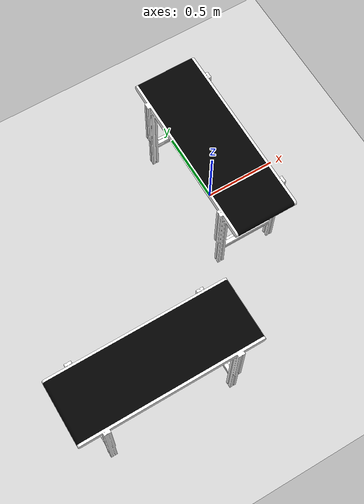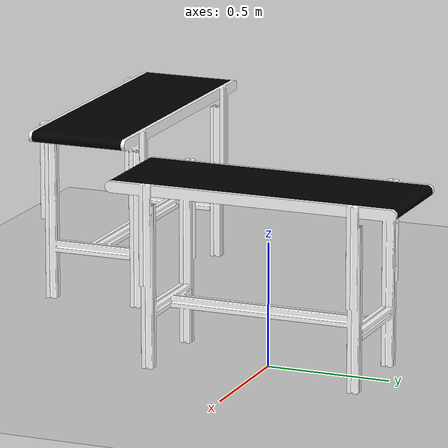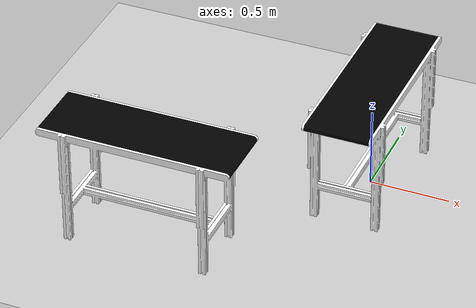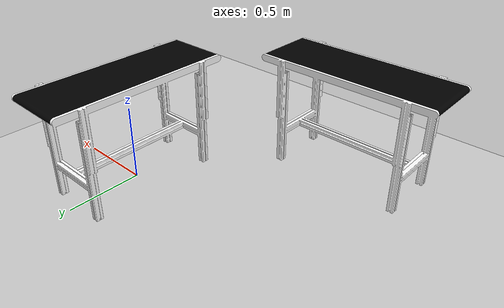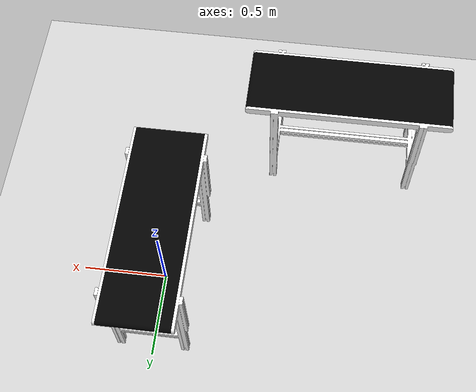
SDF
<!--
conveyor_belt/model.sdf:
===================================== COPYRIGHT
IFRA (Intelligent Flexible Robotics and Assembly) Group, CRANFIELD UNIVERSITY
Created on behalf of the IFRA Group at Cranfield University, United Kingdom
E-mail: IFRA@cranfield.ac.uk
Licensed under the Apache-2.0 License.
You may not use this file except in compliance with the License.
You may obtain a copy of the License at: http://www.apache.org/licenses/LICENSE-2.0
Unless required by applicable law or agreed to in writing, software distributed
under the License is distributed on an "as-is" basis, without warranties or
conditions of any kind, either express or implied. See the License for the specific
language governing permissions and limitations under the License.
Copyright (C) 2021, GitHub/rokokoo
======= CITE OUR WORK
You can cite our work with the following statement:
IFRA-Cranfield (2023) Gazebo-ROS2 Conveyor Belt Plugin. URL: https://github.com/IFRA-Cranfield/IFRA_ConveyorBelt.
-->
<?xml version="1.0" ?>
<sdf version="1.4">
  <world name="default">
    <gravity>0 0 -9.8</gravity>
    <include>
      <uri>model://ground_plane</uri>
    </include>
    <include>
      <uri>model://sun</uri>
    </include>
    <scene>
      <shadows>0</shadows>
    </scene>

    <!-- Publishes /gazebo/model_states so scene_publisher can track objects -->
    <plugin name="gazebo_ros_state" filename="libgazebo_ros_state.so">
      <update_rate>10.0</update_rate>
    </plugin>
    <!-- Link attacher: provides /ATTACHLINK and /DETACHLINK services -->
    <plugin name="gazebo_link_attacher" filename="libgazebo_link_attacher.so"/>
    <!-- Belt 1: original, runs along Y axis at origin -->
    <include>
      <name>conveyor_belt</name>
      <pose>0 0 0 0 0 0</pose>
      <uri>model://conveyor_belt</uri>
    </include>
    <!-- Belt 2: perpendicular to belt 1, runs along X axis at (-1,-1,0) -->
    <include>
      <name>conveyor_belt_2</name>
      <pose>-1 -1 0 0 0 -1.5708</pose>
      <uri>model://conveyor_belt_2</uri>
    </include>
  </world>
</sdf>

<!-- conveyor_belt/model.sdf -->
<sdf version="1.4">

    <model name="conveyor_belt">

        <model name="conveyorbelt_fixed">

            <static>true</static>

            <link name="belt_visual">
                <visual name="visual">
                    <geometry>
                        <mesh>
                            <scale>1 1 1</scale>
                            <uri>model://conveyor_belt/meshes/conveyor_belt.dae</uri>
                        </mesh>
                    </geometry>
                </visual>
                <collision name="collision">
                    <origin xyz="0.0 0.0 0" rpy="0.0 0.0 0.0"/>
                    <geometry>
                        <mesh>
                            <scale>1 1 1</scale>
                            <uri>model://conveyor_belt/meshes/conveyor_belt.dae</uri>
                        </mesh>
                    </geometry>
                </collision>
            </link>

            <link name="belt1_sonar_link">
                <pose>0 0.6 0.791 0 1.5708 0</pose>
                <sensor name="sonar_sensor" type="ray">
                    <always_on>1</always_on>
                    <visualize>true</visualize>
                    <update_rate>20</update_rate>
                    <ray>
                        <scan>
                            <horizontal>
                                <samples>1</samples>
                                <resolution>1</resolution>
                                <min_angle>0.0</min_angle>
                                <max_angle>0.0</max_angle>
                            </horizontal>
                        </scan>
                        <range>
                            <min>0.02</min>
                            <max>1.0</max>
                        </range>
                    </ray>
                    <plugin name="belt1_sonar_plugin" filename="libgazebo_ros_ray_sensor.so">
                        <ros>
                            <remapping>~/out:=belt1/sonar</remapping>
                        </ros>
                        <output_type>sensor_msgs/Range</output_type>
                        <frame_name>belt1_sonar_link</frame_name>
                    </plugin>
                </sensor>
            </link>

        </model>

        <model name="conveyorbelt_moving">

            <allow_auto_disable>0</allow_auto_disable>
            <static>false</static>

            <pose>0 0 0.741 0 0 0.0</pose>

            <link name="belt_moving">
                <inertial>
                    <mass>100.0</mass>
                    <inertia>
                        <ixx>0.0</ixx>
                        <ixy>0.0</ixy>
                        <ixz>0.0</ixz>
                        <iyy>0.0</iyy>
                        <iyz>0.0</iyz>
                        <izz>0.0</izz>
                    </inertia>
                </inertial>
                <collision name="belt_collision">
                    <geometry>
                        <box>
                            <size>0.425 1.2 0.00001</size>
                        </box>
                    </geometry>
                    <surface>
                        <friction>
                            <ode>
                                <mu>100.0</mu>
                                <mu2>100.0</mu2>
                            </ode>
                            <torsional>
                                <coefficient>1000.0</coefficient>
                                <patch_radius>0.1</patch_radius>
                            </torsional>
                        </friction>
                    </surface>
                </collision>
            </link>

        </model>

        <joint name="belt_joint" type="prismatic">
            <parent>conveyorbelt_fixed::belt_visual</parent>
            <child>conveyorbelt_moving::belt_moving</child>
            <axis>
                <xyz>0 1 0</xyz>
                <limit>
                    <lower>0.0</lower>
                    <upper>0.01</upper>
                </limit>
            </axis>
        </joint>

        <plugin name="ros2_conveyorbelt_plugin" filename="libros2_conveyorbelt_plugin.so" >
            <ros>
                <namespace></namespace>
            </ros>
            <max_velocity>1.0</max_velocity>
            <publish_rate>1000</publish_rate>
        </plugin>

    </model>

</sdf>

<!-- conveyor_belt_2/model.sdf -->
<sdf version="1.4">

    <model name="conveyor_belt_2">

        <model name="conveyorbelt_fixed">

            <static>true</static>

            <link name="belt_visual">
                <visual name="visual">
                    <geometry>
                        <mesh>
                            <scale>1 1 1</scale>
                            <uri>model://conveyor_belt/meshes/conveyor_belt.dae</uri>
                        </mesh>
                    </geometry>
                </visual>
                <collision name="collision">
                    <origin xyz="0.0 0.0 0" rpy="0.0 0.0 0.0"/>
                    <geometry>
                        <mesh>
                            <scale>1 1 1</scale>
                            <uri>model://conveyor_belt/meshes/conveyor_belt.dae</uri>
                        </mesh>
                    </geometry>
                </collision>
            </link>

            <link name="belt2_sonar_link">
                <pose>0 0.30 0.791 0 1.5708 0</pose>
                <sensor name="sonar_sensor" type="ray">
                    <always_on>1</always_on>
                    <visualize>true</visualize>
                    <update_rate>20</update_rate>
                    <ray>
                        <scan>
                            <horizontal>
                                <samples>1</samples>
                                <resolution>1</resolution>
                                <min_angle>0.0</min_angle>
                                <max_angle>0.0</max_angle>
                            </horizontal>
                        </scan>
                        <range>
                            <min>0.02</min>
                            <max>1.0</max>
                        </range>
                    </ray>
                    <plugin name="belt2_sonar_plugin" filename="libgazebo_ros_ray_sensor.so">
                        <ros>
                            <remapping>~/out:=belt2/sonar</remapping>
                        </ros>
                        <output_type>sensor_msgs/Range</output_type>
                        <frame_name>belt2_sonar_link</frame_name>
                    </plugin>
                </sensor>
            </link>

        </model>

        <model name="conveyorbelt_moving">

            <allow_auto_disable>0</allow_auto_disable>
            <static>false</static>

            <pose>0 0 0.741 0 0 0.0</pose>

            <link name="belt_moving">
                <inertial>
                    <mass>100.0</mass>
                    <inertia>
                        <ixx>0.0</ixx>
                        <ixy>0.0</ixy>
                        <ixz>0.0</ixz>
                        <iyy>0.0</iyy>
                        <iyz>0.0</iyz>
                        <izz>0.0</izz>
                    </inertia>
                </inertial>
                <collision name="belt_collision">
                    <geometry>
                        <box>
                            <size>0.425 1.2 0.00001</size>
                        </box>
                    </geometry>
                    <surface>
                        <friction>
                            <ode>
                                <mu>100.0</mu>
                                <mu2>100.0</mu2>
                            </ode>
                            <torsional>
                                <coefficient>1000.0</coefficient>
                                <patch_radius>0.1</patch_radius>
                            </torsional>
                        </friction>
                    </surface>
                </collision>
            </link>

        </model>

        <joint name="belt_joint" type="prismatic">
            <parent>conveyorbelt_fixed::belt_visual</parent>
            <child>conveyorbelt_moving::belt_moving</child>
            <axis>
                <xyz>0 1 0</xyz>
                <limit>
                    <lower>0.0</lower>
                    <upper>0.01</upper>
                </limit>
            </axis>
        </joint>

        <plugin name="ros2_conveyorbelt_plugin" filename="libros2_conveyorbelt_plugin.so" >
            <ros>
                <namespace>belt2</namespace>
            </ros>
            <max_velocity>1.0</max_velocity>
            <publish_rate>1000</publish_rate>
        </plugin>

    </model>

</sdf>
